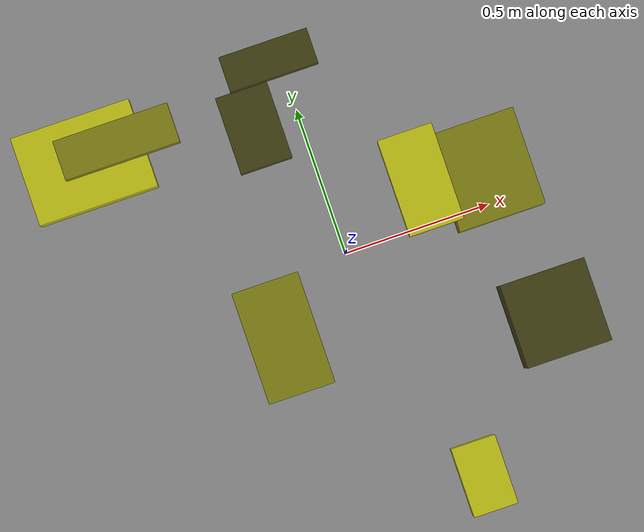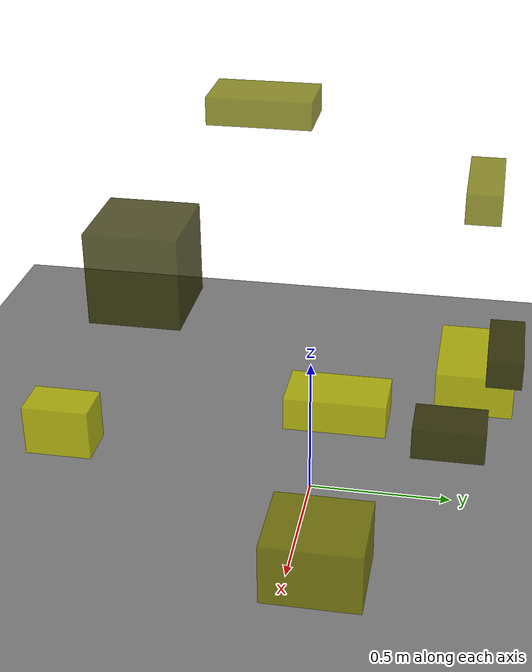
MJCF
<?xml version="1.0"?>
<mujoco model="obstacle_scene">
  <compiler angle="radian" coordinate="local"/>
  <option timestep="0.001" gravity="0 0 -9.81"/>

  <asset>
    <material name="obstacle_mat" rgba="0.8 0.8 0.0 0.8"/>
    <material name="ground_mat" rgba="0.5 0.5 0.5 1"/>
  </asset>

  <worldbody>
    <!-- Ground plane -->
    <geom name="ground" type="plane" size="3 3 0.1" material="ground_mat"/>

    <!-- Obstacles -->
    <body name="obstacle_0" pos="0.523212 -0.398909 1.097307">
      <geom name="obs_0" type="box" size="0.133464 0.131851 0.135517" rgba="0.2 0.2 0.0 0.8"/>
    </body>
    <body name="obstacle_1" pos="-0.573885 0.534803 0.943034">
      <geom name="obs_1" type="box" size="0.185548 0.062698 0.055677" rgba="0.5 0.5 0.0 0.8"/>
    </body>
    <body name="obstacle_2" pos="0.292159 0.132892 0.540785">
      <geom name="obs_2" type="box" size="0.089831 0.160332 0.054209" rgba="0.8 0.8 0.0 0.8"/>
    </body>
    <body name="obstacle_3" pos="-0.043791 0.645994 0.583085">
      <geom name="obs_3" type="box" size="0.146612 0.057659 0.047756" rgba="0.2 0.2 0.0 0.8"/>
    </body>
    <body name="obstacle_4" pos="0.520191 0.105831 0.127284">
      <geom name="obs_4" type="box" size="0.145717 0.164813 0.108867" rgba="0.5 0.5 0.0 0.8"/>
    </body>
    <body name="obstacle_5" pos="0.187076 -0.831779 0.298267">
      <geom name="obs_5" type="box" size="0.073808 0.114972 0.089580" rgba="0.8 0.8 0.0 0.8"/>
    </body>
    <body name="obstacle_6" pos="-0.153980 0.478871 0.176358">
      <geom name="obs_6" type="box" size="0.088085 0.130007 0.059909" rgba="0.2 0.2 0.0 0.8"/>
    </body>
    <body name="obstacle_7" pos="-0.280763 -0.205885 1.313848">
      <geom name="obs_7" type="box" size="0.104337 0.174664 0.045930" rgba="0.5 0.5 0.0 0.8"/>
    </body>
    <body name="obstacle_8" pos="-0.715130 0.552473 0.121267">
      <geom name="obs_8" type="box" size="0.202990 0.149720 0.084105" rgba="0.8 0.8 0.0 0.8"/>
    </body>
  </worldbody>
</mujoco>
